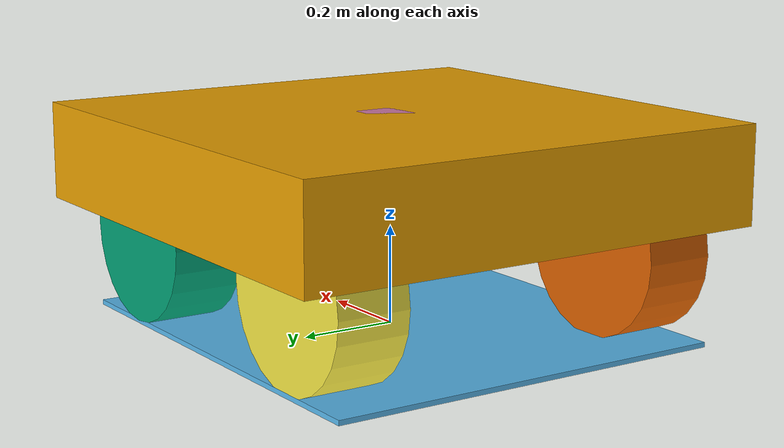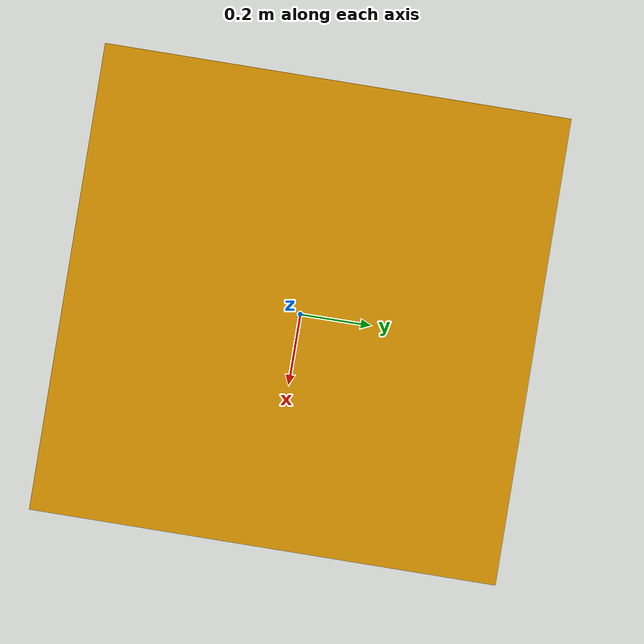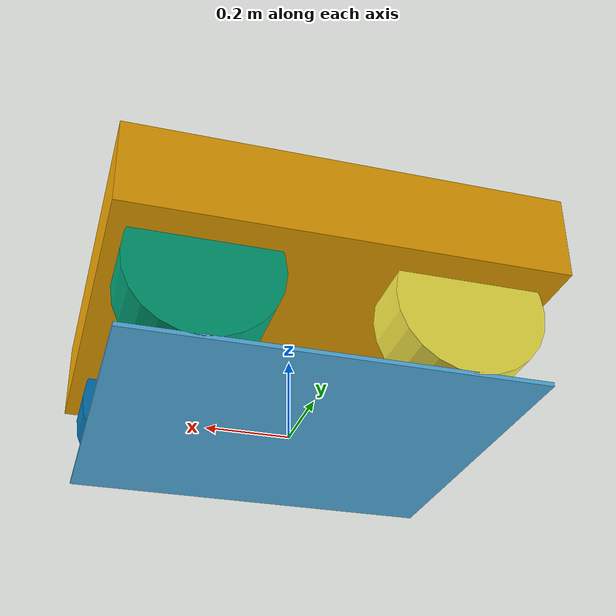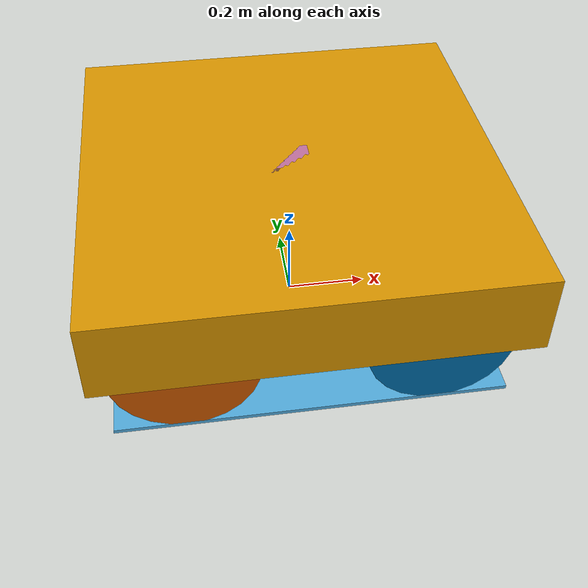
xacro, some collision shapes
<?xml version="1.0"?>
<robot name="light_seeker" xmlns:xacro="http://www.ros.org/wiki/xacro">

  <!-- Constants -->

  <xacro:property name="wheel_radius" value="0.175"/>
  <xacro:property name="wheel_width"  value="0.145"/>
  <xacro:property name="wheel_sep"    value="0.835"/>

  <!-- Base Link -->
  <link name="base_link">
    <inertial>
      <origin xyz="0 0 0.062329" rpy="0 0 0"/>
      <mass value="46.064"/>
      <inertia ixx="0.615397" ixy="-0.0240585" ixz="-0.120749"
               iyy="1.75388"  iyz="-0.0028322" izz="2.03641"/>
    </inertial>

    <visual>
      <origin xyz="-1.57768 -0.78292 -1.12211" rpy="${pi/2} 0 ${pi/2}"/>
      <geometry>
        <mesh filename="package://ros2_control_demo_example_2/meshes/Light_seeker_base_2.dae" scale="1 1 1"/>
      </geometry>
    </visual>

    <collision>
      <origin xyz="0 0 0" rpy="0 0 0"/>
      <geometry>
        <box size="1 1 0.2"/>
      </geometry>
    </collision>
  </link>

  <!-- Base Footprint -->
  <link name="base_footprint">
    <inertial>
      <origin xyz="0 0 0" rpy="0 0 0"/>
      <mass value="0.001"/>
      <inertia ixx="1e-6" ixy="0" ixz="0"
               iyy="1e-6" iyz="0" izz="1e-6"/>
    </inertial>

    <visual>
      <origin xyz="0 0 0" rpy="0 0 0"/>
      <geometry>
        <box size="0.94 ${0.345*2 + 0.145} 0.01"/>
      </geometry>
    </visual>

    <collision>
      <origin xyz="0 0 0" rpy="0 0 0"/>
      <geometry>
        <box size="0.94 ${0.345*2 + 0.145} 0.01"/>
      </geometry>
    </collision>
  </link>

  <joint name="base_footprint_to_base_link" type="fixed">
    <parent link="base_footprint"/>
    <child link="base_link"/>
    <origin xyz="0 0 0.33" rpy="0 0 0"/>
  </joint>

  <!-- Wheel Macro -->
  <xacro:macro name="wheel" params="name x y axis_y">
    <link name="${name}">
      <inertial>
        <origin xyz="0 0 0" rpy="0 0 0"/>
        <mass value="2.637"/>
        <inertia ixx="0.02467" ixy="0" ixz="0"
                 iyy="0.04411" iyz="0" izz="0.02467"/>
      </inertial>

      <visual>
        <origin xyz="0 0 0" rpy="0 ${pi/2} ${pi/2}"/>
        <geometry>
          <cylinder radius="${wheel_radius}" length="${wheel_width}"/>
        </geometry>
      </visual>

      <collision>
        <origin xyz="0 0 0" rpy="0 ${pi/2} ${pi/2}"/>
        <geometry>
          <cylinder radius="${wheel_radius}" length="${wheel_width}"/>
        </geometry>
      </collision>
    </link>

    <joint name="${name}_joint" type="continuous">
      <parent link="base_link"/>
      <child link="${name}"/>
      <origin xyz="${x} ${y} -0.155" rpy="0 0 0"/>
      <axis xyz="0 ${axis_y} 0"/>
      <dynamics damping="0.1" friction="0.0"/>
    </joint>
  </xacro:macro>

  <!-- Instantiate Wheels -->
  <xacro:wheel name="front_left_wheel_link"  x="0.295"  y="0.345" axis_y="1"/>
  <xacro:wheel name="rear_left_wheel_link"   x="-0.295" y="0.345" axis_y="1"/>
  <xacro:wheel name="front_right_wheel_link" x="0.295"  y="-0.345" axis_y="-1"/>
  <xacro:wheel name="rear_right_wheel_link"  x="-0.295" y="-0.345" axis_y="-1"/>

  <!-- Top Plate -->
  <link name="Top_plate_link">
    <inertial>
      <origin xyz="0 0 0" rpy="0 0 0"/>
      <mass value="0.001"/>
      <inertia ixx="1e-6" ixy="0" ixz="0"
               iyy="1e-6" iyz="0" izz="1e-6"/>
    </inertial>

    <visual>
      <origin xyz="0 0 0" rpy="0 0 0"/>
      <geometry>
        <box size="0.1 0.1 0.01"/>
      </geometry>
    </visual>

    <collision>
      <origin xyz="0 0 0" rpy="0 0 0"/>
      <geometry>
        <box size="0.1 0.1 0.01"/>
      </geometry>
    </collision>
  </link>

  <joint name="Top_plate_joint" type="fixed">
    <parent link="base_link"/>
    <child link="Top_plate_link"/>
    <origin xyz="0 0 0.095" rpy="0 0 0"/>
  </joint>

  <!-- ros2_control -->
  <ros2_control name="light_seeker_control" type="system">
    <hardware>
      <plugin>ros2_control_demo_example_2/DiffBotSystemHardware</plugin>
      <param name="example_param_hw_start_duration_sec">0</param>
      <param name="example_param_hw_stop_duration_sec">3.0</param>
    </hardware>

    <!-- LEFT SIDE -->
    <joint name="front_left_wheel_link_joint">
      <command_interface name="velocity"/>
      <state_interface name="position"/>
      <state_interface name="velocity"/>
    </joint>

    <joint name="rear_left_wheel_link_joint">
      <command_interface name="velocity"/>
      <state_interface name="position"/>
      <state_interface name="velocity"/>
    </joint>

    <!-- RIGHT SIDE -->
    <joint name="front_right_wheel_link_joint">
      <command_interface name="velocity"/>
      <state_interface name="position"/>
      <state_interface name="velocity"/>
    </joint>

    <joint name="rear_right_wheel_link_joint">
      <command_interface name="velocity"/>
      <state_interface name="position"/>
      <state_interface name="velocity"/>
    </joint>

  </ros2_control>

</robot>
